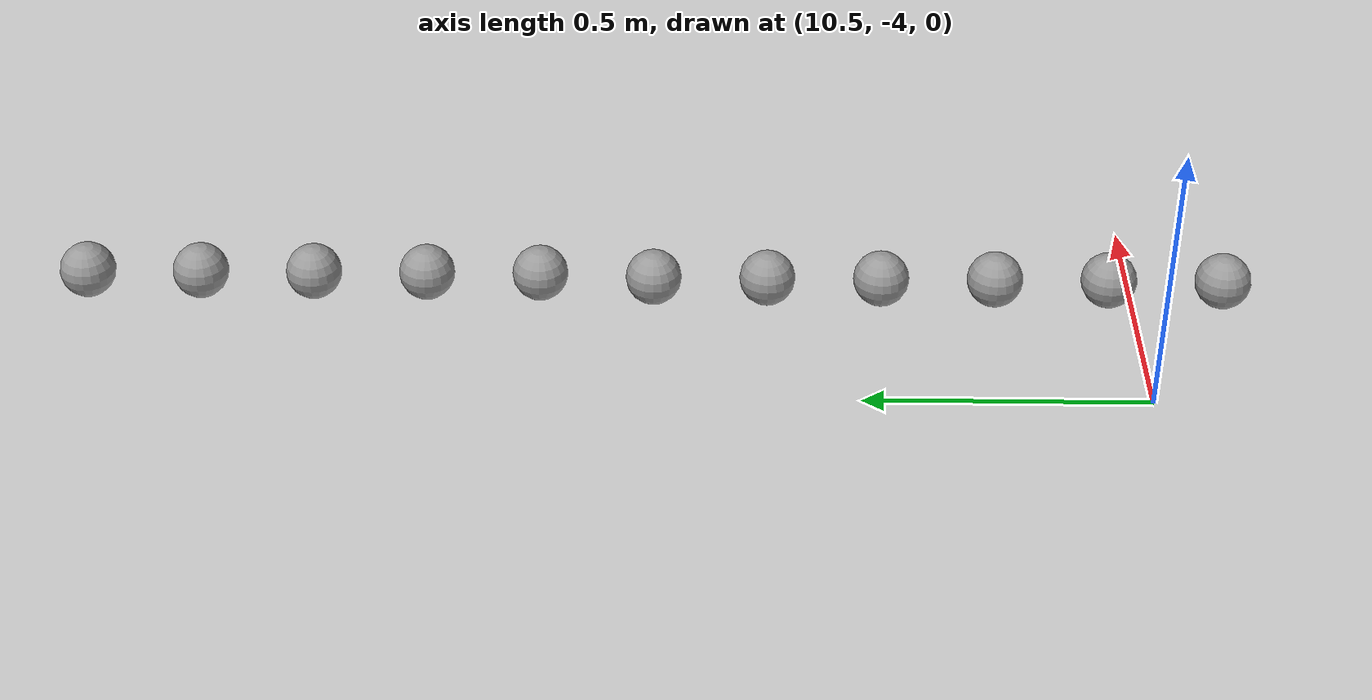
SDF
<sdf version="1.6">
 <world name="default">
  <model name="ground_plane">
   <static>1</static>
   <link name="link">
    <collision name="collision">
     <geometry><plane><normal>0 0 1</normal><size>100 100</size></plane></geometry>
     <surface><friction><ode><mu>100</mu><mu2>50</mu2></ode></friction></surface>
    </collision>
    <visual name="visual">
     <cast_shadows>0</cast_shadows>
     <geometry><plane><normal>0 0 1</normal><size>100 100</size></plane></geometry>
     <material>
      <script><uri>file://media/materials/scripts/gazebo.material</uri><name>Gazebo/Grey</name></script>
     </material>
    </visual>
   </link>
  </model>
  <model name="unit_sphere_0_450">
   <pose>10.800000 -2.120000 0.050000 0 -0 0</pose>
   <link name="link">
    <inertial>
     <mass>1</mass>
     <inertia><ixx>0.1</ixx><ixy>0</ixy><ixz>0</ixz><iyy>0.1</iyy><iyz>0</iyz><izz>0.1</izz></inertia>
    </inertial>
    <collision name="collision"><geometry><sphere><radius>0.050000</radius></sphere></geometry></collision>
    <visual name="visual">
     <geometry><sphere><radius>0.050000</radius></sphere></geometry>
     <material>
      <script><name>Gazebo/Grey</name><uri>file://media/materials/scripts/gazebo.material</uri></script>
     </material>
    </visual>
   </link>
  </model>
  <model name="unit_sphere_0_451">
   <pose>10.800000 -2.324000 0.050000 0 -0 0</pose>
   <link name="link">
    <inertial>
     <mass>1</mass>
     <inertia><ixx>0.1</ixx><ixy>0</ixy><ixz>0</ixz><iyy>0.1</iyy><iyz>0</iyz><izz>0.1</izz></inertia>
    </inertial>
    <collision name="collision"><geometry><sphere><radius>0.050000</radius></sphere></geometry></collision>
    <visual name="visual">
     <geometry><sphere><radius>0.050000</radius></sphere></geometry>
     <material>
      <script><name>Gazebo/Grey</name><uri>file://media/materials/scripts/gazebo.material</uri></script>
     </material>
    </visual>
   </link>
  </model>
  <model name="unit_sphere_0_452">
   <pose>10.800000 -2.528000 0.050000 0 -0 0</pose>
   <link name="link">
    <inertial>
     <mass>1</mass>
     <inertia><ixx>0.1</ixx><ixy>0</ixy><ixz>0</ixz><iyy>0.1</iyy><iyz>0</iyz><izz>0.1</izz></inertia>
    </inertial>
    <collision name="collision"><geometry><sphere><radius>0.050000</radius></sphere></geometry></collision>
    <visual name="visual">
     <geometry><sphere><radius>0.050000</radius></sphere></geometry>
     <material>
      <script><name>Gazebo/Grey</name><uri>file://media/materials/scripts/gazebo.material</uri></script>
     </material>
    </visual>
   </link>
  </model>
  <model name="unit_sphere_0_453">
   <pose>10.800000 -2.732000 0.050000 0 -0 0</pose>
   <link name="link">
    <inertial>
     <mass>1</mass>
     <inertia><ixx>0.1</ixx><ixy>0</ixy><ixz>0</ixz><iyy>0.1</iyy><iyz>0</iyz><izz>0.1</izz></inertia>
    </inertial>
    <collision name="collision"><geometry><sphere><radius>0.050000</radius></sphere></geometry></collision>
    <visual name="visual">
     <geometry><sphere><radius>0.050000</radius></sphere></geometry>
     <material>
      <script><name>Gazebo/Grey</name><uri>file://media/materials/scripts/gazebo.material</uri></script>
     </material>
    </visual>
   </link>
  </model>
  <model name="unit_sphere_0_454">
   <pose>10.800000 -2.936000 0.050000 0 -0 0</pose>
   <link name="link">
    <inertial>
     <mass>1</mass>
     <inertia><ixx>0.1</ixx><ixy>0</ixy><ixz>0</ixz><iyy>0.1</iyy><iyz>0</iyz><izz>0.1</izz></inertia>
    </inertial>
    <collision name="collision"><geometry><sphere><radius>0.050000</radius></sphere></geometry></collision>
    <visual name="visual">
     <geometry><sphere><radius>0.050000</radius></sphere></geometry>
     <material>
      <script><name>Gazebo/Grey</name><uri>file://media/materials/scripts/gazebo.material</uri></script>
     </material>
    </visual>
   </link>
  </model>
  <model name="unit_sphere_0_455">
   <pose>10.790000 -3.140000 0.050000 0 -0 0</pose>
   <link name="link">
    <inertial>
     <mass>1</mass>
     <inertia><ixx>0.1</ixx><ixy>0</ixy><ixz>0</ixz><iyy>0.1</iyy><iyz>0</iyz><izz>0.1</izz></inertia>
    </inertial>
    <collision name="collision"><geometry><sphere><radius>0.050000</radius></sphere></geometry></collision>
    <visual name="visual">
     <geometry><sphere><radius>0.050000</radius></sphere></geometry>
     <material>
      <script><name>Gazebo/Grey</name><uri>file://media/materials/scripts/gazebo.material</uri></script>
     </material>
    </visual>
   </link>
  </model>
  <model name="unit_sphere_0_456">
   <pose>10.790000 -3.344000 0.050000 0 -0 0</pose>
   <link name="link">
    <inertial>
     <mass>1</mass>
     <inertia><ixx>0.1</ixx><ixy>0</ixy><ixz>0</ixz><iyy>0.1</iyy><iyz>0</iyz><izz>0.1</izz></inertia>
    </inertial>
    <collision name="collision"><geometry><sphere><radius>0.050000</radius></sphere></geometry></collision>
    <visual name="visual">
     <geometry><sphere><radius>0.050000</radius></sphere></geometry>
     <material>
      <script><name>Gazebo/Grey</name><uri>file://media/materials/scripts/gazebo.material</uri></script>
     </material>
    </visual>
   </link>
  </model>
  <model name="unit_sphere_0_457">
   <pose>10.790000 -3.548000 0.050000 0 -0 0</pose>
   <link name="link">
    <inertial>
     <mass>1</mass>
     <inertia><ixx>0.1</ixx><ixy>0</ixy><ixz>0</ixz><iyy>0.1</iyy><iyz>0</iyz><izz>0.1</izz></inertia>
    </inertial>
    <collision name="collision"><geometry><sphere><radius>0.050000</radius></sphere></geometry></collision>
    <visual name="visual">
     <geometry><sphere><radius>0.050000</radius></sphere></geometry>
     <material>
      <script><name>Gazebo/Grey</name><uri>file://media/materials/scripts/gazebo.material</uri></script>
     </material>
    </visual>
   </link>
  </model>
  <model name="unit_sphere_0_458">
   <pose>10.790000 -3.752000 0.050000 0 -0 0</pose>
   <link name="link">
    <inertial>
     <mass>1</mass>
     <inertia><ixx>0.1</ixx><ixy>0</ixy><ixz>0</ixz><iyy>0.1</iyy><iyz>0</iyz><izz>0.1</izz></inertia>
    </inertial>
    <collision name="collision"><geometry><sphere><radius>0.050000</radius></sphere></geometry></collision>
    <visual name="visual">
     <geometry><sphere><radius>0.050000</radius></sphere></geometry>
     <material>
      <script><name>Gazebo/Grey</name><uri>file://media/materials/scripts/gazebo.material</uri></script>
     </material>
    </visual>
   </link>
  </model>
  <model name="unit_sphere_0_459">
   <pose>10.790000 -3.956000 0.050000 0 -0 0</pose>
   <link name="link">
    <inertial>
     <mass>1</mass>
     <inertia><ixx>0.1</ixx><ixy>0</ixy><ixz>0</ixz><iyy>0.1</iyy><iyz>0</iyz><izz>0.1</izz></inertia>
    </inertial>
    <collision name="collision"><geometry><sphere><radius>0.050000</radius></sphere></geometry></collision>
    <visual name="visual">
     <geometry><sphere><radius>0.050000</radius></sphere></geometry>
     <material>
      <script><name>Gazebo/Grey</name><uri>file://media/materials/scripts/gazebo.material</uri></script>
     </material>
    </visual>
   </link>
  </model>
  <model name="unit_sphere_0_460">
   <pose>10.790000 -4.160000 0.050000 0 -0 0</pose>
   <link name="link">
    <inertial>
     <mass>1</mass>
     <inertia><ixx>0.1</ixx><ixy>0</ixy><ixz>0</ixz><iyy>0.1</iyy><iyz>0</iyz><izz>0.1</izz></inertia>
    </inertial>
    <collision name="collision"><geometry><sphere><radius>0.050000</radius></sphere></geometry></collision>
    <visual name="visual">
     <geometry><sphere><radius>0.050000</radius></sphere></geometry>
     <material>
      <script><name>Gazebo/Grey</name><uri>file://media/materials/scripts/gazebo.material</uri></script>
     </material>
    </visual>
   </link>
  </model>
 </world>
</sdf>
